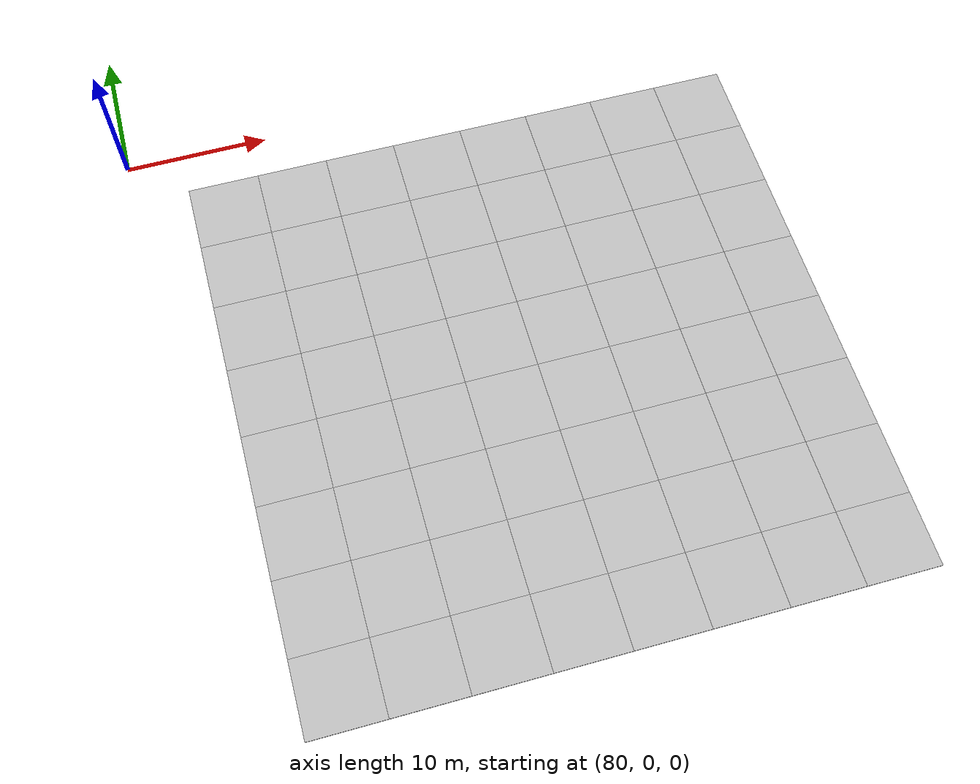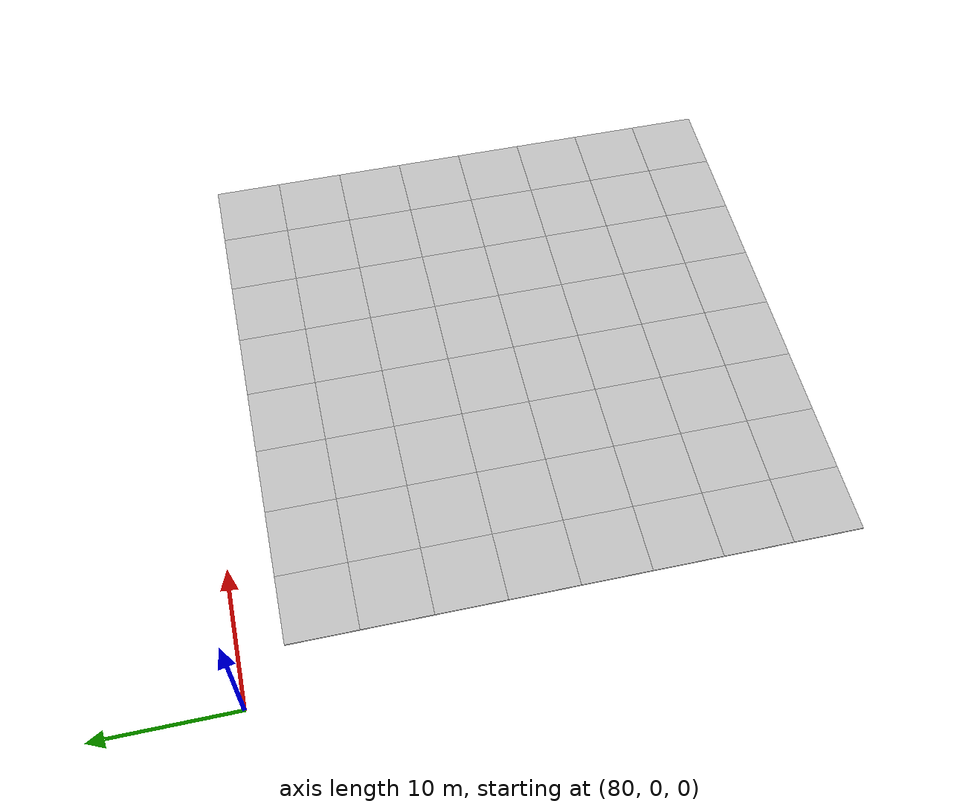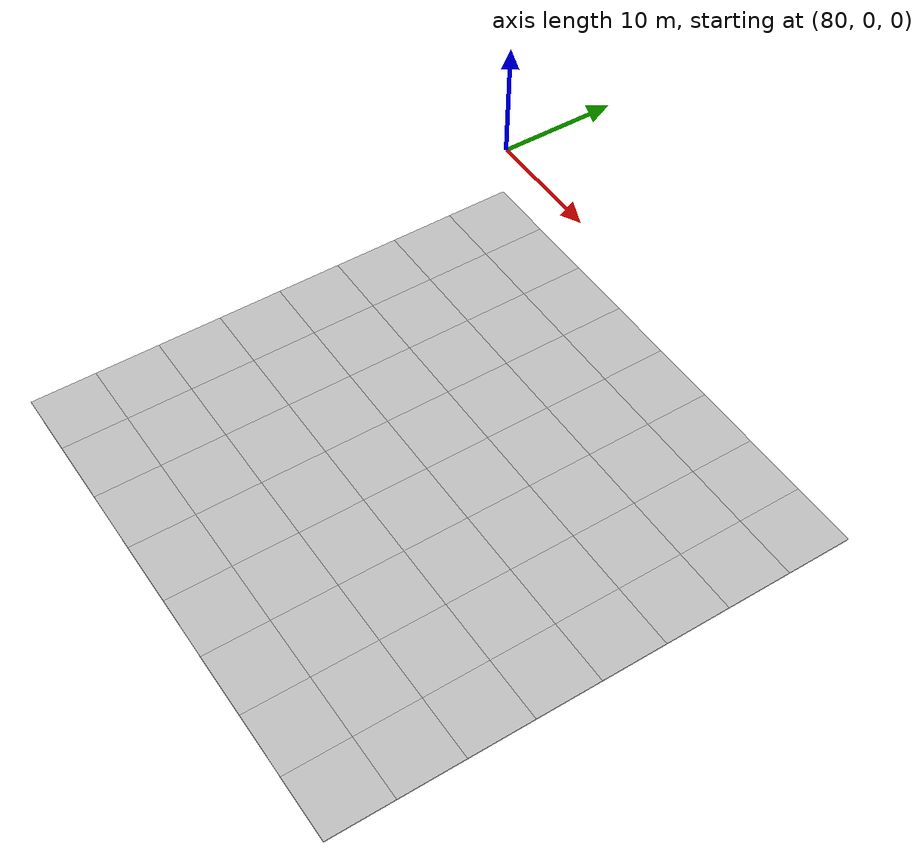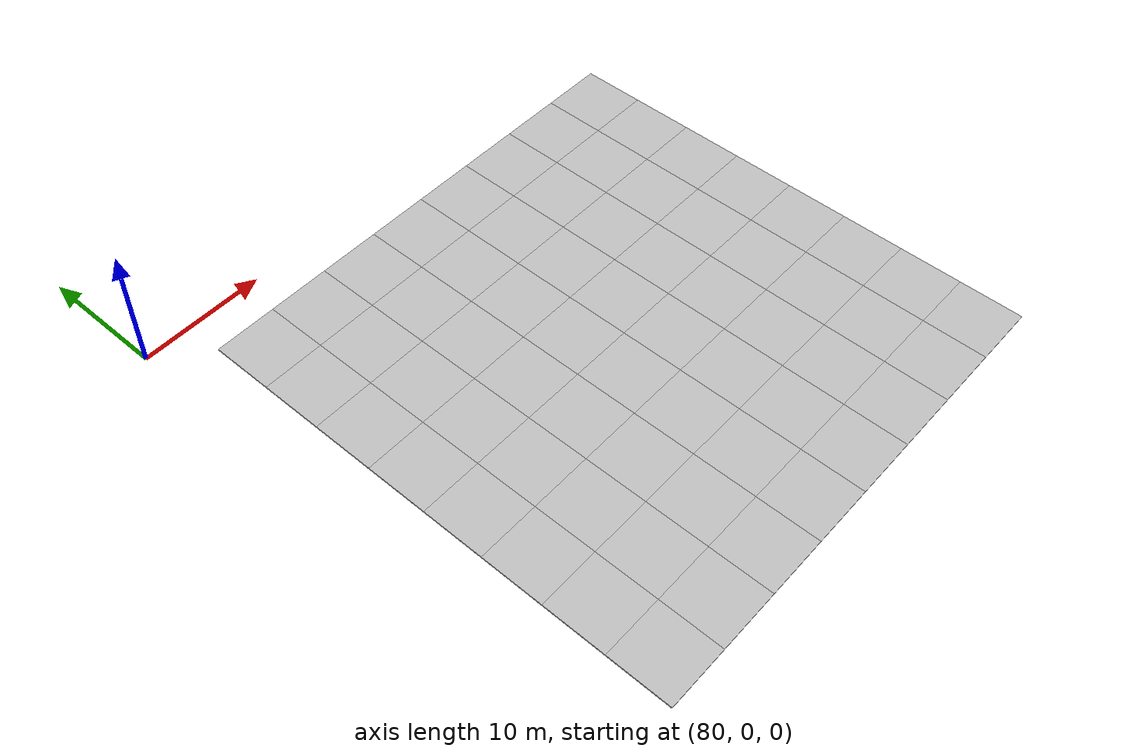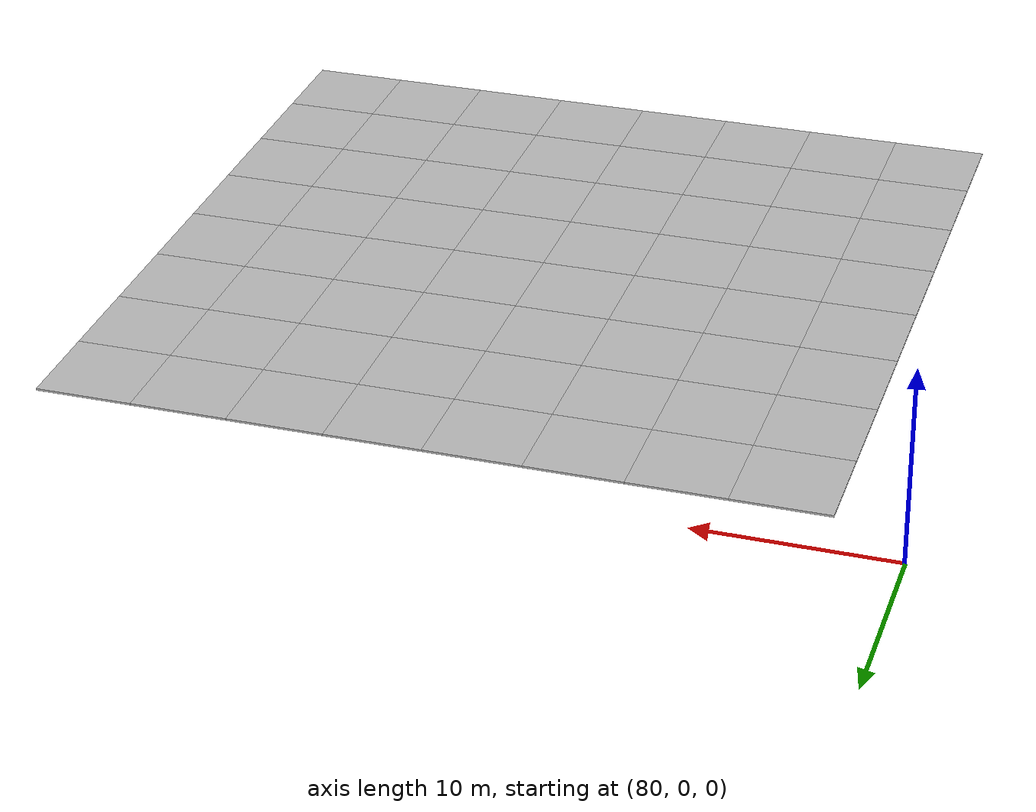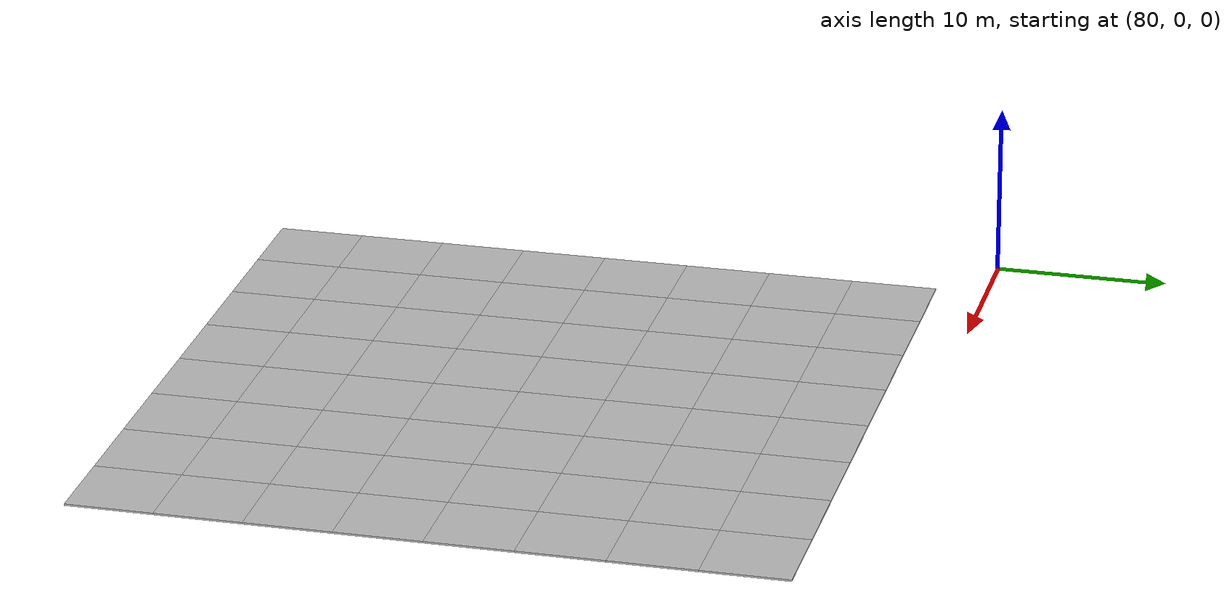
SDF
<sdf version="1.7">
 <world name="default">
  <model name="mud_plane_80x80_5">
   <model name="mud_plane_40x40_1">
    <model name="mud_plane_20x20">
     <model name="mud_plane">
      <static>1</static>
      <link name="link">
       <collision name="collision"><geometry><box><size>10 10 0.1</size></box></geometry></collision>
       <visual name="visual_1">
        <pose>-2.5 2.5 -0.05 0 -0 0</pose>
        <cast_shadows>0</cast_shadows>
        <geometry><box><size>5 5 0.1</size></box></geometry>
        <material>
         <script>
          <uri>model://mud_plane/materials/scripts</uri>
          <uri>model://mud_plane/materials/textures</uri>
          <name>vrc/mud</name>
         </script>
        </material>
       </visual>
       <visual name="visual_2">
        <pose>2.5 2.5 -0.05 0 -0 0</pose>
        <cast_shadows>0</cast_shadows>
        <geometry><box><size>5 5 0.1</size></box></geometry>
        <material>
         <script>
          <uri>model://mud_plane/materials/scripts</uri>
          <uri>model://mud_plane/materials/textures</uri>
          <name>vrc/mud</name>
         </script>
        </material>
       </visual>
       <visual name="visual_3">
        <pose>2.5 -2.5 -0.05 0 -0 0</pose>
        <cast_shadows>0</cast_shadows>
        <geometry><box><size>5 5 0.1</size></box></geometry>
        <material>
         <script>
          <uri>model://mud_plane/materials/scripts</uri>
          <uri>model://mud_plane/materials/textures</uri>
          <name>vrc/mud</name>
         </script>
        </material>
       </visual>
       <visual name="visual_4">
        <pose>-2.5 -2.5 -0.05 0 -0 0</pose>
        <cast_shadows>0</cast_shadows>
        <geometry><box><size>5 5 0.1</size></box></geometry>
        <material>
         <script>
          <uri>model://mud_plane/materials/scripts</uri>
          <uri>model://mud_plane/materials/textures</uri>
          <name>vrc/mud</name>
         </script>
        </material>
       </visual>
      </link>
      <pose>-4.99986 -4.99991 0 0 -0 0</pose>
     </model>
     <model name="mud_plane_0">
      <static>1</static>
      <link name="link">
       <collision name="collision"><geometry><box><size>10 10 0.1</size></box></geometry></collision>
       <visual name="visual_1">
        <pose>-2.5 2.5 -0.05 0 -0 0</pose>
        <cast_shadows>0</cast_shadows>
        <geometry><box><size>5 5 0.1</size></box></geometry>
        <material>
         <script>
          <uri>model://mud_plane/materials/scripts</uri>
          <uri>model://mud_plane/materials/textures</uri>
          <name>vrc/mud</name>
         </script>
        </material>
       </visual>
       <visual name="visual_2">
        <pose>2.5 2.5 -0.05 0 -0 0</pose>
        <cast_shadows>0</cast_shadows>
        <geometry><box><size>5 5 0.1</size></box></geometry>
        <material>
         <script>
          <uri>model://mud_plane/materials/scripts</uri>
          <uri>model://mud_plane/materials/textures</uri>
          <name>vrc/mud</name>
         </script>
        </material>
       </visual>
       <visual name="visual_3">
        <pose>2.5 -2.5 -0.05 0 -0 0</pose>
        <cast_shadows>0</cast_shadows>
        <geometry><box><size>5 5 0.1</size></box></geometry>
        <material>
         <script>
          <uri>model://mud_plane/materials/scripts</uri>
          <uri>model://mud_plane/materials/textures</uri>
          <name>vrc/mud</name>
         </script>
        </material>
       </visual>
       <visual name="visual_4">
        <pose>-2.5 -2.5 -0.05 0 -0 0</pose>
        <cast_shadows>0</cast_shadows>
        <geometry><box><size>5 5 0.1</size></box></geometry>
        <material>
         <script>
          <uri>model://mud_plane/materials/scripts</uri>
          <uri>model://mud_plane/materials/textures</uri>
          <name>vrc/mud</name>
         </script>
        </material>
       </visual>
      </link>
      <pose>-4.99946 4.99954 0 0 -0 0</pose>
     </model>
     <model name="mud_plane_1">
      <static>1</static>
      <link name="link">
       <collision name="collision"><geometry><box><size>10 10 0.1</size></box></geometry></collision>
       <visual name="visual_1">
        <pose>-2.5 2.5 -0.05 0 -0 0</pose>
        <cast_shadows>0</cast_shadows>
        <geometry><box><size>5 5 0.1</size></box></geometry>
        <material>
         <script>
          <uri>model://mud_plane/materials/scripts</uri>
          <uri>model://mud_plane/materials/textures</uri>
          <name>vrc/mud</name>
         </script>
        </material>
       </visual>
       <visual name="visual_2">
        <pose>2.5 2.5 -0.05 0 -0 0</pose>
        <cast_shadows>0</cast_shadows>
        <geometry><box><size>5 5 0.1</size></box></geometry>
        <material>
         <script>
          <uri>model://mud_plane/materials/scripts</uri>
          <uri>model://mud_plane/materials/textures</uri>
          <name>vrc/mud</name>
         </script>
        </material>
       </visual>
       <visual name="visual_3">
        <pose>2.5 -2.5 -0.05 0 -0 0</pose>
        <cast_shadows>0</cast_shadows>
        <geometry><box><size>5 5 0.1</size></box></geometry>
        <material>
         <script>
          <uri>model://mud_plane/materials/scripts</uri>
          <uri>model://mud_plane/materials/textures</uri>
          <name>vrc/mud</name>
         </script>
        </material>
       </visual>
       <visual name="visual_4">
        <pose>-2.5 -2.5 -0.05 0 -0 0</pose>
        <cast_shadows>0</cast_shadows>
        <geometry><box><size>5 5 0.1</size></box></geometry>
        <material>
         <script>
          <uri>model://mud_plane/materials/scripts</uri>
          <uri>model://mud_plane/materials/textures</uri>
          <name>vrc/mud</name>
         </script>
        </material>
       </visual>
      </link>
      <pose>4.99964 -4.99949 0 0 -0 0</pose>
     </model>
     <model name="mud_plane_2">
      <static>1</static>
      <link name="link">
       <collision name="collision"><geometry><box><size>10 10 0.1</size></box></geometry></collision>
       <visual name="visual_1">
        <pose>-2.5 2.5 -0.05 0 -0 0</pose>
        <cast_shadows>0</cast_shadows>
        <geometry><box><size>5 5 0.1</size></box></geometry>
        <material>
         <script>
          <uri>model://mud_plane/materials/scripts</uri>
          <uri>model://mud_plane/materials/textures</uri>
          <name>vrc/mud</name>
         </script>
        </material>
       </visual>
       <visual name="visual_2">
        <pose>2.5 2.5 -0.05 0 -0 0</pose>
        <cast_shadows>0</cast_shadows>
        <geometry><box><size>5 5 0.1</size></box></geometry>
        <material>
         <script>
          <uri>model://mud_plane/materials/scripts</uri>
          <uri>model://mud_plane/materials/textures</uri>
          <name>vrc/mud</name>
         </script>
        </material>
       </visual>
       <visual name="visual_3">
        <pose>2.5 -2.5 -0.05 0 -0 0</pose>
        <cast_shadows>0</cast_shadows>
        <geometry><box><size>5 5 0.1</size></box></geometry>
        <material>
         <script>
          <uri>model://mud_plane/materials/scripts</uri>
          <uri>model://mud_plane/materials/textures</uri>
          <name>vrc/mud</name>
         </script>
        </material>
       </visual>
       <visual name="visual_4">
        <pose>-2.5 -2.5 -0.05 0 -0 0</pose>
        <cast_shadows>0</cast_shadows>
        <geometry><box><size>5 5 0.1</size></box></geometry>
        <material>
         <script>
          <uri>model://mud_plane/materials/scripts</uri>
          <uri>model://mud_plane/materials/textures</uri>
          <name>vrc/mud</name>
         </script>
        </material>
       </visual>
      </link>
      <pose>4.99967 4.99986 0 0 -0 0</pose>
     </model>
     <static>0</static>
     <pose>-9.99895 9.99843 0 0 -0 0</pose>
    </model>
    <model name="mud_plane_20x20_0">
     <model name="mud_plane">
      <static>1</static>
      <link name="link">
       <collision name="collision"><geometry><box><size>10 10 0.1</size></box></geometry></collision>
       <visual name="visual_1">
        <pose>-2.5 2.5 -0.05 0 -0 0</pose>
        <cast_shadows>0</cast_shadows>
        <geometry><box><size>5 5 0.1</size></box></geometry>
        <material>
         <script>
          <uri>model://mud_plane/materials/scripts</uri>
          <uri>model://mud_plane/materials/textures</uri>
          <name>vrc/mud</name>
         </script>
        </material>
       </visual>
       <visual name="visual_2">
        <pose>2.5 2.5 -0.05 0 -0 0</pose>
        <cast_shadows>0</cast_shadows>
        <geometry><box><size>5 5 0.1</size></box></geometry>
        <material>
         <script>
          <uri>model://mud_plane/materials/scripts</uri>
          <uri>model://mud_plane/materials/textures</uri>
          <name>vrc/mud</name>
         </script>
        </material>
       </visual>
       <visual name="visual_3">
        <pose>2.5 -2.5 -0.05 0 -0 0</pose>
        <cast_shadows>0</cast_shadows>
        <geometry><box><size>5 5 0.1</size></box></geometry>
        <material>
         <script>
          <uri>model://mud_plane/materials/scripts</uri>
          <uri>model://mud_plane/materials/textures</uri>
          <name>vrc/mud</name>
         </script>
        </material>
       </visual>
       <visual name="visual_4">
        <pose>-2.5 -2.5 -0.05 0 -0 0</pose>
        <cast_shadows>0</cast_shadows>
        <geometry><box><size>5 5 0.1</size></box></geometry>
        <material>
         <script>
          <uri>model://mud_plane/materials/scripts</uri>
          <uri>model://mud_plane/materials/textures</uri>
          <name>vrc/mud</name>
         </script>
        </material>
       </visual>
      </link>
      <pose>-4.99986 -4.99991 0 0 -0 0</pose>
     </model>
     <model name="mud_plane_0">
      <static>1</static>
      <link name="link">
       <collision name="collision"><geometry><box><size>10 10 0.1</size></box></geometry></collision>
       <visual name="visual_1">
        <pose>-2.5 2.5 -0.05 0 -0 0</pose>
        <cast_shadows>0</cast_shadows>
        <geometry><box><size>5 5 0.1</size></box></geometry>
        <material>
         <script>
          <uri>model://mud_plane/materials/scripts</uri>
          <uri>model://mud_plane/materials/textures</uri>
          <name>vrc/mud</name>
         </script>
        </material>
       </visual>
       <visual name="visual_2">
        <pose>2.5 2.5 -0.05 0 -0 0</pose>
        <cast_shadows>0</cast_shadows>
        <geometry><box><size>5 5 0.1</size></box></geometry>
        <material>
         <script>
          <uri>model://mud_plane/materials/scripts</uri>
          <uri>model://mud_plane/materials/textures</uri>
          <name>vrc/mud</name>
         </script>
        </material>
       </visual>
       <visual name="visual_3">
        <pose>2.5 -2.5 -0.05 0 -0 0</pose>
        <cast_shadows>0</cast_shadows>
        <geometry><box><size>5 5 0.1</size></box></geometry>
        <material>
         <script>
          <uri>model://mud_plane/materials/scripts</uri>
          <uri>model://mud_plane/materials/textures</uri>
          <name>vrc/mud</name>
         </script>
        </material>
       </visual>
       <visual name="visual_4">
        <pose>-2.5 -2.5 -0.05 0 -0 0</pose>
        <cast_shadows>0</cast_shadows>
        <geometry><box><size>5 5 0.1</size></box></geometry>
        <material>
         <script>
          <uri>model://mud_plane/materials/scripts</uri>
          <uri>model://mud_plane/materials/textures</uri>
          <name>vrc/mud</name>
         </script>
        </material>
       </visual>
      </link>
      <pose>-4.99946 4.99954 0 0 -0 0</pose>
     </model>
     <model name="mud_plane_1">
      <static>1</static>
      <link name="link">
       <collision name="collision"><geometry><box><size>10 10 0.1</size></box></geometry></collision>
       <visual name="visual_1">
        <pose>-2.5 2.5 -0.05 0 -0 0</pose>
        <cast_shadows>0</cast_shadows>
        <geometry><box><size>5 5 0.1</size></box></geometry>
        <material>
         <script>
          <uri>model://mud_plane/materials/scripts</uri>
          <uri>model://mud_plane/materials/textures</uri>
          <name>vrc/mud</name>
         </script>
        </material>
       </visual>
       <visual name="visual_2">
        <pose>2.5 2.5 -0.05 0 -0 0</pose>
        <cast_shadows>0</cast_shadows>
        <geometry><box><size>5 5 0.1</size></box></geometry>
        <material>
         <script>
          <uri>model://mud_plane/materials/scripts</uri>
          <uri>model://mud_plane/materials/textures</uri>
          <name>vrc/mud</name>
         </script>
        </material>
       </visual>
       <visual name="visual_3">
        <pose>2.5 -2.5 -0.05 0 -0 0</pose>
        <cast_shadows>0</cast_shadows>
        <geometry><box><size>5 5 0.1</size></box></geometry>
        <material>
         <script>
          <uri>model://mud_plane/materials/scripts</uri>
          <uri>model://mud_plane/materials/textures</uri>
          <name>vrc/mud</name>
         </script>
        </material>
       </visual>
       <visual name="visual_4">
        <pose>-2.5 -2.5 -0.05 0 -0 0</pose>
        <cast_shadows>0</cast_shadows>
        <geometry><box><size>5 5 0.1</size></box></geometry>
        <material>
         <script>
          <uri>model://mud_plane/materials/scripts</uri>
          <uri>model://mud_plane/materials/textures</uri>
          <name>vrc/mud</name>
         </script>
        </material>
       </visual>
      </link>
      <pose>4.99964 -4.99949 0 0 -0 0</pose>
     </model>
     <model name="mud_plane_2">
      <static>1</static>
      <link name="link">
       <collision name="collision"><geometry><box><size>10 10 0.1</size></box></geometry></collision>
       <visual name="visual_1">
        <pose>-2.5 2.5 -0.05 0 -0 0</pose>
        <cast_shadows>0</cast_shadows>
        <geometry><box><size>5 5 0.1</size></box></geometry>
        <material>
         <script>
          <uri>model://mud_plane/materials/scripts</uri>
          <uri>model://mud_plane/materials/textures</uri>
          <name>vrc/mud</name>
         </script>
        </material>
       </visual>
       <visual name="visual_2">
        <pose>2.5 2.5 -0.05 0 -0 0</pose>
        <cast_shadows>0</cast_shadows>
        <geometry><box><size>5 5 0.1</size></box></geometry>
        <material>
         <script>
          <uri>model://mud_plane/materials/scripts</uri>
          <uri>model://mud_plane/materials/textures</uri>
          <name>vrc/mud</name>
         </script>
        </material>
       </visual>
       <visual name="visual_3">
        <pose>2.5 -2.5 -0.05 0 -0 0</pose>
        <cast_shadows>0</cast_shadows>
        <geometry><box><size>5 5 0.1</size></box></geometry>
        <material>
         <script>
          <uri>model://mud_plane/materials/scripts</uri>
          <uri>model://mud_plane/materials/textures</uri>
          <name>vrc/mud</name>
         </script>
        </material>
       </visual>
       <visual name="visual_4">
        <pose>-2.5 -2.5 -0.05 0 -0 0</pose>
        <cast_shadows>0</cast_shadows>
        <geometry><box><size>5 5 0.1</size></box></geometry>
        <material>
         <script>
          <uri>model://mud_plane/materials/scripts</uri>
          <uri>model://mud_plane/materials/textures</uri>
          <name>vrc/mud</name>
         </script>
        </material>
       </visual>
      </link>
      <pose>4.99967 4.99986 0 0 -0 0</pose>
     </model>
     <static>0</static>
     <pose>9.99933 9.9997 0 0 -0 0</pose>
    </model>
    <model name="mud_plane_20x20_1">
     <model name="mud_plane">
      <static>1</static>
      <link name="link">
       <collision name="collision"><geometry><box><size>10 10 0.1</size></box></geometry></collision>
       <visual name="visual_1">
        <pose>-2.5 2.5 -0.05 0 -0 0</pose>
        <cast_shadows>0</cast_shadows>
        <geometry><box><size>5 5 0.1</size></box></geometry>
        <material>
         <script>
          <uri>model://mud_plane/materials/scripts</uri>
          <uri>model://mud_plane/materials/textures</uri>
          <name>vrc/mud</name>
         </script>
        </material>
       </visual>
       <visual name="visual_2">
        <pose>2.5 2.5 -0.05 0 -0 0</pose>
        <cast_shadows>0</cast_shadows>
        <geometry><box><size>5 5 0.1</size></box></geometry>
        <material>
         <script>
          <uri>model://mud_plane/materials/scripts</uri>
          <uri>model://mud_plane/materials/textures</uri>
          <name>vrc/mud</name>
         </script>
        </material>
       </visual>
       <visual name="visual_3">
        <pose>2.5 -2.5 -0.05 0 -0 0</pose>
        <cast_shadows>0</cast_shadows>
        <geometry><box><size>5 5 0.1</size></box></geometry>
        <material>
         <script>
          <uri>model://mud_plane/materials/scripts</uri>
          <uri>model://mud_plane/materials/textures</uri>
          <name>vrc/mud</name>
         </script>
        </material>
       </visual>
       <visual name="visual_4">
        <pose>-2.5 -2.5 -0.05 0 -0 0</pose>
        <cast_shadows>0</cast_shadows>
        <geometry><box><size>5 5 0.1</size></box></geometry>
        <material>
         <script>
          <uri>model://mud_plane/materials/scripts</uri>
          <uri>model://mud_plane/materials/textures</uri>
          <name>vrc/mud</name>
         </script>
        </material>
       </visual>
      </link>
      <pose>-4.99986 -4.99991 0 0 -0 0</pose>
     </model>
     <model name="mud_plane_0">
      <static>1</static>
      <link name="link">
       <collision name="collision"><geometry><box><size>10 10 0.1</size></box></geometry></collision>
       <visual name="visual_1">
        <pose>-2.5 2.5 -0.05 0 -0 0</pose>
        <cast_shadows>0</cast_shadows>
        <geometry><box><size>5 5 0.1</size></box></geometry>
        <material>
         <script>
          <uri>model://mud_plane/materials/scripts</uri>
          <uri>model://mud_plane/materials/textures</uri>
          <name>vrc/mud</name>
         </script>
        </material>
       </visual>
       <visual name="visual_2">
        <pose>2.5 2.5 -0.05 0 -0 0</pose>
        <cast_shadows>0</cast_shadows>
        <geometry><box><size>5 5 0.1</size></box></geometry>
        <material>
         <script>
          <uri>model://mud_plane/materials/scripts</uri>
          <uri>model://mud_plane/materials/textures</uri>
          <name>vrc/mud</name>
         </script>
        </material>
       </visual>
       <visual name="visual_3">
        <pose>2.5 -2.5 -0.05 0 -0 0</pose>
        <cast_shadows>0</cast_shadows>
        <geometry><box><size>5 5 0.1</size></box></geometry>
        <material>
         <script>
          <uri>model://mud_plane/materials/scripts</uri>
          <uri>model://mud_plane/materials/textures</uri>
          <name>vrc/mud</name>
         </script>
        </material>
       </visual>
       <visual name="visual_4">
        <pose>-2.5 -2.5 -0.05 0 -0 0</pose>
        <cast_shadows>0</cast_shadows>
        <geometry><box><size>5 5 0.1</size></box></geometry>
        <material>
         <script>
          <uri>model://mud_plane/materials/scripts</uri>
          <uri>model://mud_plane/materials/textures</uri>
          <name>vrc/mud</name>
         </script>
        </material>
       </visual>
      </link>
      <pose>-4.99946 4.99954 0 0 -0 0</pose>
     </model>
     <model name="mud_plane_1">
      <static>1</static>
      <link name="link">
       <collision name="collision"><geometry><box><size>10 10 0.1</size></box></geometry></collision>
       <visual name="visual_1">
        <pose>-2.5 2.5 -0.05 0 -0 0</pose>
        <cast_shadows>0</cast_shadows>
        <geometry><box><size>5 5 0.1</size></box></geometry>
        <material>
         <script>
          <uri>model://mud_plane/materials/scripts</uri>
          <uri>model://mud_plane/materials/textures</uri>
          <name>vrc/mud</name>
         </script>
        </material>
       </visual>
       <visual name="visual_2">
        <pose>2.5 2.5 -0.05 0 -0 0</pose>
        <cast_shadows>0</cast_shadows>
        <geometry><box><size>5 5 0.1</size></box></geometry>
        <material>
         <script>
          <uri>model://mud_plane/materials/scripts</uri>
          <uri>model://mud_plane/materials/textures</uri>
          <name>vrc/mud</name>
         </script>
        </material>
       </visual>
       <visual name="visual_3">
        <pose>2.5 -2.5 -0.05 0 -0 0</pose>
        <cast_shadows>0</cast_shadows>
        <geometry><box><size>5 5 0.1</size></box></geometry>
        <material>
         <script>
          <uri>model://mud_plane/materials/scripts</uri>
          <uri>model://mud_plane/materials/textures</uri>
          <name>vrc/mud</name>
         </script>
        </material>
       </visual>
       <visual name="visual_4">
        <pose>-2.5 -2.5 -0.05 0 -0 0</pose>
        <cast_shadows>0</cast_shadows>
        <geometry><box><size>5 5 0.1</size></box></geometry>
        <material>
         <script>
          <uri>model://mud_plane/materials/scripts</uri>
          <uri>model://mud_plane/materials/textures</uri>
          <name>vrc/mud</name>
         </script>
        </material>
       </visual>
      </link>
      <pose>4.99964 -4.99949 0 0 -0 0</pose>
     </model>
     <model name="mud_plane_2">
      <static>1</static>
      <link name="link">
       <collision name="collision"><geometry><box><size>10 10 0.1</size></box></geometry></collision>
       <visual name="visual_1">
        <pose>-2.5 2.5 -0.05 0 -0 0</pose>
        <cast_shadows>0</cast_shadows>
        <geometry><box><size>5 5 0.1</size></box></geometry>
        <material>
         <script>
          <uri>model://mud_plane/materials/scripts</uri>
          <uri>model://mud_plane/materials/textures</uri>
          <name>vrc/mud</name>
         </script>
        </material>
       </visual>
       <visual name="visual_2">
        <pose>2.5 2.5 -0.05 0 -0 0</pose>
        <cast_shadows>0</cast_shadows>
        <geometry><box><size>5 5 0.1</size></box></geometry>
        <material>
         <script>
          <uri>model://mud_plane/materials/scripts</uri>
          <uri>model://mud_plane/materials/textures</uri>
          <name>vrc/mud</name>
         </script>
        </material>
       </visual>
       <visual name="visual_3">
        <pose>2.5 -2.5 -0.05 0 -0 0</pose>
        <cast_shadows>0</cast_shadows>
        <geometry><box><size>5 5 0.1</size></box></geometry>
        <material>
         <script>
          <uri>model://mud_plane/materials/scripts</uri>
          <uri>model://mud_plane/materials/textures</uri>
          <name>vrc/mud</name>
         </script>
        </material>
       </visual>
       <visual name="visual_4">
        <pose>-2.5 -2.5 -0.05 0 -0 0</pose>
        <cast_shadows>0</cast_shadows>
        <geometry><box><size>5 5 0.1</size></box></geometry>
        <material>
         <script>
          <uri>model://mud_plane/materials/scripts</uri>
          <uri>model://mud_plane/materials/textures</uri>
          <name>vrc/mud</name>
         </script>
        </material>
       </visual>
      </link>
      <pose>4.99967 4.99986 0 0 -0 0</pose>
     </model>
     <static>0</static>
     <pose>9.9993 -9.99877 0 0 -0 0</pose>
    </model>
    <model name="mud_plane_20x20_2">
     <model name="mud_plane">
      <static>1</static>
      <link name="link">
       <collision name="collision"><geometry><box><size>10 10 0.1</size></box></geometry></collision>
       <visual name="visual_1">
        <pose>-2.5 2.5 -0.05 0 -0 0</pose>
        <cast_shadows>0</cast_shadows>
        <geometry><box><size>5 5 0.1</size></box></geometry>
        <material>
         <script>
          <uri>model://mud_plane/materials/scripts</uri>
          <uri>model://mud_plane/materials/textures</uri>
          <name>vrc/mud</name>
         </script>
        </material>
       </visual>
       <visual name="visual_2">
        <pose>2.5 2.5 -0.05 0 -0 0</pose>
        <cast_shadows>0</cast_shadows>
        <geometry><box><size>5 5 0.1</size></box></geometry>
        <material>
         <script>
          <uri>model://mud_plane/materials/scripts</uri>
          <uri>model://mud_plane/materials/textures</uri>
          <name>vrc/mud</name>
         </script>
        </material>
       </visual>
       <visual name="visual_3">
        <pose>2.5 -2.5 -0.05 0 -0 0</pose>
        <cast_shadows>0</cast_shadows>
        <geometry><box><size>5 5 0.1</size></box></geometry>
        <material>
         <script>
          <uri>model://mud_plane/materials/scripts</uri>
          <uri>model://mud_plane/materials/textures</uri>
          <name>vrc/mud</name>
         </script>
        </material>
       </visual>
       <visual name="visual_4">
        <pose>-2.5 -2.5 -0.05 0 -0 0</pose>
        <cast_shadows>0</cast_shadows>
        <geometry><box><size>5 5 0.1</size></box></geometry>
        <material>
         <script>
          <uri>model://mud_plane/materials/scripts</uri>
          <uri>model://mud_plane/materials/textures</uri>
          <name>vrc/mud</name>
         </script>
        </material>
       </visual>
      </link>
      <pose>-4.99986 -4.99991 0 0 -0 0</pose>
     </model>
     <model name="mud_plane_0">
      <static>1</static>
      <link name="link">
       <collision name="collision"><geometry><box><size>10 10 0.1</size></box></geometry></collision>
       <visual name="visual_1">
        <pose>-2.5 2.5 -0.05 0 -0 0</pose>
        <cast_shadows>0</cast_shadows>
        <geometry><box><size>5 5 0.1</size></box></geometry>
        <material>
         <script>
          <uri>model://mud_plane/materials/scripts</uri>
          <uri>model://mud_plane/materials/textures</uri>
          <name>vrc/mud</name>
         </script>
        </material>
       </visual>
       <visual name="visual_2">
        <pose>2.5 2.5 -0.05 0 -0 0</pose>
        <cast_shadows>0</cast_shadows>
        <geometry><box><size>5 5 0.1</size></box></geometry>
        <material>
         <script>
          <uri>model://mud_plane/materials/scripts</uri>
          <uri>model://mud_plane/materials/textures</uri>
          <name>vrc/mud</name>
         </script>
        </material>
       </visual>
       <visual name="visual_3">
        <pose>2.5 -2.5 -0.05 0 -0 0</pose>
        <cast_shadows>0</cast_shadows>
        <geometry><box><size>5 5 0.1</size></box></geometry>
        <material>
         <script>
          <uri>model://mud_plane/materials/scripts</uri>
          <uri>model://mud_plane/materials/textures</uri>
          <name>vrc/mud</name>
         </script>
        </material>
       </visual>
       <visual name="visual_4">
        <pose>-2.5 -2.5 -0.05 0 -0 0</pose>
        <cast_shadows>0</cast_shadows>
        <geometry><box><size>5 5 0.1</size></box></geometry>
        <material>
         <script>
          <uri>model://mud_plane/materials/scripts</uri>
          <uri>model://mud_plane/materials/textures</uri>
          <name>vrc/mud</name>
         </script>
        </material>
       </visual>
      </link>
      <pose>-4.99946 4.99954 0 0 -0 0</pose>
     </model>
     <model name="mud_plane_1">
      <static>1</static>
      <link name="link">
       <collision name="collision"><geometry><box><size>10 10 0.1</size></box></geometry></collision>
       <visual name="visual_1">
        <pose>-2.5 2.5 -0.05 0 -0 0</pose>
        <cast_shadows>0</cast_shadows>
        <geometry><box><size>5 5 0.1</size></box></geometry>
        <material>
         <script>
          <uri>model://mud_plane/materials/scripts</uri>
          <uri>model://mud_plane/materials/textures</uri>
          <name>vrc/mud</name>
         </script>
        </material>
       </visual>
       <visual name="visual_2">
        <pose>2.5 2.5 -0.05 0 -0 0</pose>
        <cast_shadows>0</cast_shadows>
        <geometry><box><size>5 5 0.1</size></box></geometry>
        <material>
         <script>
          <uri>model://mud_plane/materials/scripts</uri>
          <uri>model://mud_plane/materials/textures</uri>
          <name>vrc/mud</name>
         </script>
        </material>
       </visual>
       <visual name="visual_3">
        <pose>2.5 -2.5 -0.05 0 -0 0</pose>
        <cast_shadows>0</cast_shadows>
        <geometry><box><size>5 5 0.1</size></box></geometry>
        <material>
         <script>
          <uri>model://mud_plane/materials/scripts</uri>
          <uri>model://mud_plane/materials/textures</uri>
          <name>vrc/mud</name>
         </script>
        </material>
       </visual>
       <visual name="visual_4">
        <pose>-2.5 -2.5 -0.05 0 -0 0</pose>
        <cast_shadows>0</cast_shadows>
        <geometry><box><size>5 5 0.1</size></box></geometry>
        <material>
         <script>
          <uri>model://mud_plane/materials/scripts</uri>
          <uri>model://mud_plane/materials/textures</uri>
          <name>vrc/mud</name>
         </script>
        </material>
       </visual>
      </link>
      <pose>4.99964 -4.99949 0 0 -0 0</pose>
     </model>
     <model name="mud_plane_2">
      <static>1</static>
      <link name="link">
       <collision name="collision"><geometry><box><size>10 10 0.1</size></box></geometry></collision>
       <visual name="visual_1">
        <pose>-2.5 2.5 -0.05 0 -0 0</pose>
        <cast_shadows>0</cast_shadows>
        <geometry><box><size>5 5 0.1</size></box></geometry>
        <material>
         <script>
          <uri>model://mud_plane/materials/scripts</uri>
          <uri>model://mud_plane/materials/textures</uri>
          <name>vrc/mud</name>
         </script>
        </material>
       </visual>
       <visual name="visual_2">
        <pose>2.5 2.5 -0.05 0 -0 0</pose>
        <cast_shadows>0</cast_shadows>
        <geometry><box><size>5 5 0.1</size></box></geometry>
        <material>
         <script>
          <uri>model://mud_plane/materials/scripts</uri>
          <uri>model://mud_plane/materials/textures</uri>
          <name>vrc/mud</name>
         </script>
        </material>
       </visual>
       <visual name="visual_3">
        <pose>2.5 -2.5 -0.05 0 -0 0</pose>
        <cast_shadows>0</cast_shadows>
        <geometry><box><size>5 5 0.1</size></box></geometry>
        <material>
         <script>
          <uri>model://mud_plane/materials/scripts</uri>
          <uri>model://mud_plane/materials/textures</uri>
          <name>vrc/mud</name>
         </script>
        </material>
       </visual>
       <visual name="visual_4">
        <pose>-2.5 -2.5 -0.05 0 -0 0</pose>
        <cast_shadows>0</cast_shadows>
        <geometry><box><size>5 5 0.1</size></box></geometry>
        <material>
         <script>
          <uri>model://mud_plane/materials/scripts</uri>
          <uri>model://mud_plane/materials/textures</uri>
          <name>vrc/mud</name>
         </script>
        </material>
       </visual>
      </link>
      <pose>4.99967 4.99986 0 0 -0 0</pose>
     </model>
     <static>0</static>
     <pose>-9.99969 -9.99935 0 0 -0 0</pose>
    </model>
    <static>0</static>
    <pose>-19.9982 19.9977 0 0 -0 0</pose>
   </model>
   <static>0</static>
   <pose>123.857 -42.9997 0 0 -0 0</pose>
  </model>
 </world>
</sdf>
